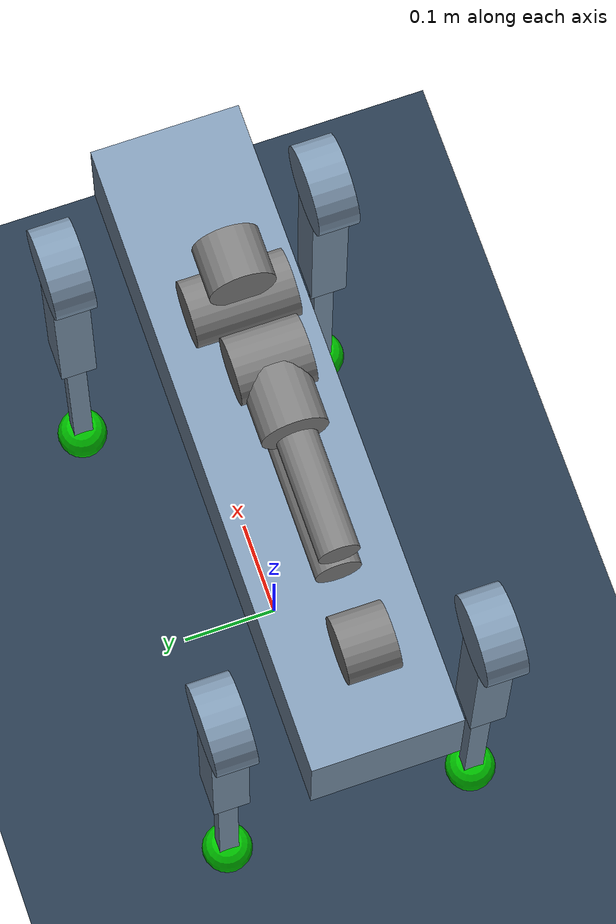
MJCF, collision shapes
<mujoco model="aliengo_description_scene">

    <include file="aliengo_z1.xml" />

    <asset>
        <texture name="texplane" type="2d" builtin="checker" rgb1=".2 .3 .4" rgb2=".1 0.15 0.2" width="512" height="512" mark="cross" markrgb=".8 .8 .8"/>
        <material name="matplane" reflectance="0.3" texture="texplane" texrepeat="1 1" texuniform="true"/>
    </asset>

    <worldbody>
        <light pos="0 0 3" dir="0 0 -1"  directional="false"/>
        <geom name="floor" pos="0 0 0" size="0 0 .25" type="plane" material="matplane" condim="3" group="1" />
    </worldbody>
</mujoco>

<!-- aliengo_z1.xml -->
<mujoco model="aliengo_description">
    <compiler angle="radian" meshdir="../meshes" />
    <size njmax="250" nconmax="50" nuser_actuator="1" />

    <option timestep="0.001" iterations="50" tolerance="1e-10" solver="Newton" jacobian="dense" cone="elliptic" impratio="100" />

    <default>
        <joint damping="0.9" armature="0.01" frictionloss="0.2" />
        <motor ctrllimited="true" ctrlrange = "-44 44" forcelimited="false"/>
	<default class="collision">
          <geom condim="3" friction="0.6 0.3 0.3" rgba="0.5 0.6 0.7 1" group="0" />
	</default>
	<default class="visual">
          <geom condim="3" type="mesh" group="1" conaffinity="0" contype="0" rgba="0.2 0.2 0.2 1" />
	</default>
    </default>

    <visual>
        <map force="0.01" zfar="30"/>
        <rgba haze="0.15 0.25 0.35 1"/>
        <quality shadowsize="2048"/>
        <global offwidth="800" offheight="800"/>
    </visual>

    <asset>
        <mesh name="trunk_mesh" file="trunk.stl" />
        <mesh name="hip_mesh" file="hip.stl" />
        <mesh name="thigh_mirror_mesh" file="thigh_mirror.stl" />
	    <mesh name="calf_mesh" file="calf.stl" />
        <mesh name="thigh_mesh" file="thigh.stl" />
        <mesh name="z1_Link00" file="z1_Link00.stl" />
        <mesh name="z1_Link01" file="z1_Link01.stl" />
        <mesh name="z1_Link02" file="z1_Link02.stl" />
        <mesh name="z1_Link03" file="z1_Link03.stl" />
        <mesh name="z1_Link04" file="z1_Link04.stl" />
        <mesh name="z1_Link05" file="z1_Link05.stl" />
        <mesh name="z1_Link06" file="z1_Link06.stl" />

        <texture type="skybox" builtin="gradient" rgb1="0.3 0.5 0.7" rgb2="0 0 0" width="512" height="512"/>
    </asset>

    <worldbody>
        <light mode="targetbodycom" target="trunk" directional="false" diffuse=".8 .8 .8" specular="0.3 0.3 0.3" pos="0 0 4.0" dir="0 0 -1"/>

	<!-- trunk -->
        <body name="trunk" pos="0 0 0.55">
            <inertial pos="0.00846406 0.00404455 -0.000762916" quat="-3.12625e-05 0.708321 0.00247254 0.705886" mass="9.042" diaginertia="0.174706 0.161175 0.033357" />
            <freejoint name="root"/>
            <geom class="collision" size="0.3235 0.075 0.056" type="box" />
	    <geom class="visual" mesh="trunk_mesh" />
	    <!-- site for root imu sensor -->
        <site name="imu" size="0.0005 0.0005 0.0005" pos="0 0 0" />
        <geom type="mesh" contype="0" conaffinity="0" group="1" mesh="z1_Link00" pos="0.10 0 0.056"/>
        <geom size="0.0325 0.0255" pos="0.10 0 0.0255" type="cylinder" />
        <body name="link01" pos="0.10 0 0.115">
            <inertial pos="2.47e-06 -0.00025198 0.0231717" quat="0.705633 0.708578 -0.000280458 0.000356448" mass="0.673326" diaginertia="0.00128328 0.000839362 0.000719308" />
            <joint name="joint1" pos="0 0 0" axis="0 0 1" limited="true" range="-2.61799 2.61799" damping="1" frictionloss="1" />
            <geom type="mesh" contype="0" conaffinity="0" group="1" mesh="z1_Link01" />
            <body name="link02" pos="0 0 0.045">
                <inertial pos="-0.110126 0.00240029 0.00158266" quat="-0.00720473 0.706934 0.0117222 0.707146" mass="1.19132" diaginertia="0.0246612 0.0243113 0.00100468" />
                <joint name="joint2" pos="0 0 0" axis="0 1 0" limited="true" range="0 3.14159" damping="2" frictionloss="2" />
                <geom type="mesh" contype="0" conaffinity="0" group="1" mesh="z1_Link02" />
                <geom size="0.0325 0.051" quat="0.707107 0.707107 0 0" type="cylinder" />
                <geom size="0.0225 0.1175" pos="-0.1625 0 0" quat="0.707107 0 0.707107 0" type="cylinder" />
                <geom size="0.0325 0.0255" pos="-0.35 0 0" quat="0.707107 0.707107 0 0" type="cylinder" />
                <body name="link03" pos="-0.35 0 0">
                    <inertial pos="0.106092 -0.00541815 0.0347638" quat="0.390759 0.613535 0.495032 0.475211" mass="0.839409" diaginertia="0.00955021 0.00938044 0.000558553" />
                    <joint name="joint3" pos="0 0 0" axis="0 1 0" limited="true" range="-4.7822 0" damping="1" frictionloss="1" />
                    <geom type="mesh" contype="0" conaffinity="0" group="1" mesh="z1_Link03" />
                    <geom size="0.02 0.058" pos="0.128 0 0.055" quat="0.707107 0 0.707107 0" type="cylinder" />
                    <geom size="0.0325 0.0295" pos="0.2205 0 0.055" quat="0.707107 0 0.707107 0" type="cylinder" />
                    <body name="link04" pos="0.218 0 0.057">
                        <inertial pos="0.0436668 0.00364738 -0.00170192" quat="0.0441445 0.67379 0.128937 0.726246" mass="0.564046" diaginertia="0.000984312 0.00093769 0.000302838" />
                        <joint name="joint4" pos="0 0 0" axis="0 1 0" limited="true" range="-1.74533 1.5708" damping="1" frictionloss="1" />
                        <geom type="mesh" contype="0" conaffinity="0" group="1" mesh="z1_Link04" />
                        <geom size="0.0325 0.0365" pos="0.0472 0 0" quat="0.707107 0.707107 0 0" type="cylinder" />
                        <body name="link05" pos="0.07 0 0">
                            <inertial pos="0.0312153 0 0.00646316" quat="0.531936 0.464048 0.457086 0.541088" mass="0.389385" diaginertia="0.000558963 0.000547314 0.000167332" />
                            <joint name="joint5" pos="0 0 0" axis="0 0 1" limited="true" range="-1.72788 1.72788" damping="1" frictionloss="1" />
                            <geom type="mesh" contype="0" conaffinity="0" group="1" mesh="z1_Link05" />
                            <body name="link06" pos="0.0492 0 0">
                                <inertial pos="0.0241569 -0.00017355 -0.00143876" quat="0.997266 -0.0715433 0.00854786 -0.0164304" mass="0.288758" diaginertia="0.000183329 0.000147473 0.000146778" />
                                <joint name="joint6" pos="0 0 0" axis="1 0 0" limited="true" range="-2.79253 2.79253" damping="1" frictionloss="1" />
                                <geom type="mesh" contype="0" conaffinity="0" group="1" mesh="z1_Link06" />
                                <geom size="0.0325 0.0255" pos="0.0255 0 0" quat="0.707107 0 0.707107 0" type="cylinder" />
                            </body>
                        </body>
                    </body>
                </body>
            </body>
        </body>
	    <!-- front right -->
	    <body name="FR_hip" pos="0.2399 -0.051 0">
		<inertial pos="-0.022191 -0.015144 -1.5e-05" quat="0.0135493 0.706835 -0.0117635 0.707151" mass="1.993" diaginertia="0.00558695 0.00491009 0.00290132" />
		<joint name="FR_hip_joint" axis="1 0 0" limited="true" range="-1.22173 1.22173" />
		<geom class="collision" size="0.046 0.0209" pos="0 -0.083 0" quat="0.707107 0.707107 0 0" type="cylinder" />
		<geom class="visual"  quat="0 1 0 0" mesh="hip_mesh" />
		<body name="FR_thigh" pos="0 -0.083 0">
		    <inertial pos="-0.005607 0.003877 -0.048199" quat="0.694544 -0.0335669 -0.031246 0.717987" mass="0.639" diaginertia="0.0058474 0.00571186 0.000324584" />
		    <joint name="FR_thigh_joint" axis="0 1 0" limited="false" />
		    <geom class="collision" size="0.125 0.0187 0.0215" pos="0 0 -0.125" quat="0.707107 0 0.707107 0" type="box" />
		    <geom class="visual" mesh="thigh_mirror_mesh" />
		    <body name="FR_calf" pos="0 0 -0.25">
			<inertial pos="0.00215606 4.88427e-05 -0.166671" quat="0.707462 0.00517582 0.00535172 0.706712" mass="0.267" diaginertia="0.00690975 0.00689712 5.4885e-05" />
			<joint name="FR_calf_joint" axis="0 1 0" limited="true" range="-2.77507 -0.645772" />
			<geom class="collision" size="0.125 0.0104 0.008" pos="0 0 -0.125" quat="0.707107 0 0.707107 0" type="box" />
			<geom class="visual" mesh="calf_mesh" />
			<body name="FR_foot" pos="0 0 -0.25">
			    <geom class="collision" size="0.0265" pos="0 0 0" rgba="0 0.8 0 1" type="sphere" />
            	<site name="FR_foot_sensor" size="0.0265" pos="0 0 0" />
			</body>
		    </body>
		</body>
	    </body>
	    <!-- front left -->
	    <body name="FL_hip" pos="0.2399 0.051 0">
		<inertial pos="-0.022191 0.015144 -1.5e-05" quat="-0.0135493 0.706835 0.0117635 0.707151" mass="1.993" diaginertia="0.00558695 0.00491009 0.00290132" />
		<joint name="FL_hip_joint" axis="1 0 0" limited="true" range="-1.22173 1.22173" />
		<geom class="collision" size="0.046 0.0209" pos="0 0.083 0" quat="0.707107 0.707107 0 0" type="cylinder" />
		<geom class="visual" quat="1 0 0 0" mesh="hip_mesh" />
		<body name="FL_thigh" pos="0 0.083 0">
		    <inertial pos="-0.005607 -0.003877 -0.048199" quat="0.717987 -0.031246 -0.0335669 0.694544" mass="0.639" diaginertia="0.0058474 0.00571186 0.000324584" />
		    <joint name="FL_thigh_joint" axis="0 1 0" limited="false" />
		    <geom class="collision" size="0.125 0.0187 0.0215" pos="0 0 -0.125" quat="0.707107 0 0.707107 0" type="box" />
		    <geom class="visual" mesh="thigh_mesh" />
		    <body name="FL_calf" pos="0 0 -0.25">
			<inertial pos="0.00215606 4.88427e-05 -0.166671" quat="0.707462 0.00517582 0.00535172 0.706712" mass="0.267" diaginertia="0.00690975 0.00689712 5.4885e-05" />
			<joint name="FL_calf_joint" axis="0 1 0" limited="true" range="-2.77507 -0.645772" />
			<geom class="collision" size="0.125 0.0104 0.008" pos="0 0 -0.125" quat="0.707107 0 0.707107 0" type="box" />
			<geom class="visual" mesh="calf_mesh" />
			<body name="FL_foot" pos="0 0 -0.25">
			    <geom class="collision" size="0.0265" pos="0 0 0" rgba="0 0.8 0 1" type="sphere" />
            	<site name="FL_foot_sensor" size="0.0265" pos="0 0 0" />
			</body>
		    </body>
		</body>
	    </body>
	    <!-- rear right -->
	    <body name="RR_hip" pos="-0.2399 -0.051 0">
		<inertial pos="0.022191 -0.015144 -1.5e-05" quat="-0.0117635 0.707151 0.0135493 0.706835" mass="1.993" diaginertia="0.00558695 0.00491009 0.00290132" />
		<joint name="RR_hip_joint" axis="1 0 0" limited="true" range="-1.22173 1.22173" />
		<geom class="collision" size="0.046 0.0209" pos="0 -0.083 0" quat="0.707107 0.707107 0 0" type="cylinder" />
		<geom class="visual" quat="0 0 0 -1" mesh="hip_mesh" />
		<body name="RR_thigh" pos="0 -0.083 0">
		    <inertial pos="-0.005607 0.003877 -0.048199" quat="0.694544 -0.0335669 -0.031246 0.717987" mass="0.639" diaginertia="0.0058474 0.00571186 0.000324584" />
		    <joint name="RR_thigh_joint" axis="0 1 0" limited="false" />
		    <geom class="collision" size="0.125 0.0187 0.0215" pos="0 0 -0.125" quat="0.707107 0 0.707107 0" type="box" />
		    <geom class="visual" mesh="thigh_mirror_mesh" />
		    <body name="RR_calf" pos="0 0 -0.25">
			<inertial pos="0.00215606 4.88427e-05 -0.166671" quat="0.707462 0.00517582 0.00535172 0.706712" mass="0.267" diaginertia="0.00690975 0.00689712 5.4885e-05" />
			<joint name="RR_calf_joint" axis="0 1 0" limited="true" range="-2.77507 -0.645772" />
			<geom class="collision" size="0.125 0.0104 0.008" pos="0 0 -0.125" quat="0.707107 0 0.707107 0" type="box" />
			<geom class="visual" mesh="calf_mesh" />
			<body name="RR_foot" pos="0 0 -0.25">
			    <geom class="collision" size="0.0265" pos="0 0 0" rgba="0 0.8 0 1" type="sphere" />
            	<site name="RR_foot_sensor" size="0.0265" pos="0 0 0" />
			</body>
		    </body>
		</body>
	    </body>
	    <!-- rear left -->
	    <body name="RL_hip" pos="-0.2399 0.051 0">
		<inertial pos="0.022191 0.015144 -1.5e-05" quat="0.0117635 0.707151 -0.0135493 0.706835" mass="1.993" diaginertia="0.00558695 0.00491009 0.00290132" />
		<joint name="RL_hip_joint" axis="1 0 0" limited="true" range="-1.22173 1.22173" />
		<geom class="collision" size="0.046 0.0209" pos="0 0.083 0" quat="0.707107 0.707107 0 0" type="cylinder" />
		<geom class="visual" quat="0 0 1 0" mesh="hip_mesh" />
		<body name="RL_thigh" pos="0 0.083 0">
		    <inertial pos="-0.005607 -0.003877 -0.048199" quat="0.717987 -0.031246 -0.0335669 0.694544" mass="0.639" diaginertia="0.0058474 0.00571186 0.000324584" />
		    <joint name="RL_thigh_joint" axis="0 1 0" limited="false" />
		    <geom class="collision" size="0.125 0.0187 0.0215" pos="0 0 -0.125" quat="0.707107 0 0.707107 0" type="box" />
		    <geom class="visual" mesh="thigh_mesh" />
		    <body name="RL_calf" pos="0 0 -0.25">
			<inertial pos="0.00215606 4.88427e-05 -0.166671" quat="0.707462 0.00517582 0.00535172 0.706712" mass="0.267" diaginertia="0.00690975 0.00689712 5.4885e-05" />
			<joint name="RL_calf_joint" axis="0 1 0" limited="true" range="-2.77507 -0.645772" />
			<geom class="collision" size="0.125 0.0104 0.008" pos="0 0 -0.125" quat="0.707107 0 0.707107 0" type="box" />
			<geom class="visual" mesh="calf_mesh" />
			<body name="RL_foot" pos="0 0 -0.25">
			    <geom class="collision" size="0.0265" pos="0 0 0" rgba="0 0.8 0 1" type="sphere" />
            	<site name="RL_foot_sensor" size="0.0265" pos="0 0 0" />
			</body>
		    </body>
		</body>
	    </body>
	</body>
    </worldbody>

    <actuator>
        <!-- FR leg -->
        <motor name="FR_hip_motor" joint="FR_hip_joint" />
        <motor name="FR_thigh_motor" joint="FR_thigh_joint" />
        <motor name="FR_calf_motor" joint="FR_calf_joint" />
        <!-- FL leg -->
        <motor name="FL_hip_motor" joint="FL_hip_joint" />
        <motor name="FL_thigh_motor" joint="FL_thigh_joint" />
        <motor name="FL_calf_motor" joint="FL_calf_joint" />
        <!-- RR leg -->
        <motor name="RR_hip_motor" joint="RR_hip_joint" />
        <motor name="RR_thigh_motor" joint="RR_thigh_joint" />
        <motor name="RR_calf_motor" joint="RR_calf_joint" />
        <!-- RL leg -->
        <motor name="RL_hip_motor" joint="RL_hip_joint" />
        <motor name="RL_thigh_motor" joint="RL_thigh_joint" />
        <motor name="RL_calf_motor" joint="RL_calf_joint" />
        <motor name="joint1_motor" joint="joint1" ctrlrange="-33.5 33.5" ctrllimited="true"/>
        <motor name="joint2_motor" joint="joint2" ctrlrange="-33.5 33.5" ctrllimited="true"/>
        <motor name="joint3_motor" joint="joint3" ctrlrange="-33.5 33.5" ctrllimited="true"/>
        <motor name="joint4_motor" joint="joint4" ctrlrange="-33.5 33.5" ctrllimited="true"/>
        <motor name="joint5_motor" joint="joint5" ctrlrange="-33.5 33.5" ctrllimited="true"/>
        <motor name="joint6_motor" joint="joint6" ctrlrange="-33.5 33.5" ctrllimited="true"/>
    </actuator>

    <sensor>
	<!-- imu -->
	<gyro          name="Accelerometer_gyro"     site="imu" />
	<accelerometer name="Accelerometer_accelerometer"    site="imu" />
	<velocimeter name="Accelerometer_velocimeter" site="imu" />
	<touch name="touch_FR" site="FR_foot_sensor"/>
	<touch name="touch_FL" site="FL_foot_sensor"/>
	<touch name="touch_RR" site="RR_foot_sensor"/>
	<touch name="touch_RL" site="RL_foot_sensor"/>
    </sensor>

</mujoco>
